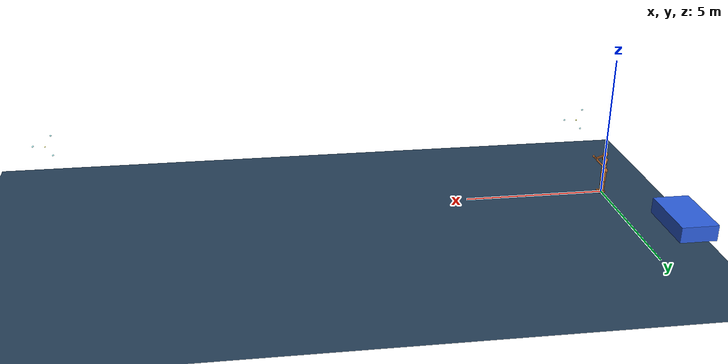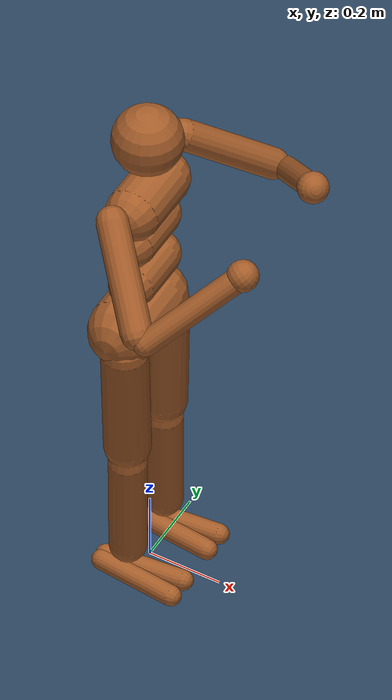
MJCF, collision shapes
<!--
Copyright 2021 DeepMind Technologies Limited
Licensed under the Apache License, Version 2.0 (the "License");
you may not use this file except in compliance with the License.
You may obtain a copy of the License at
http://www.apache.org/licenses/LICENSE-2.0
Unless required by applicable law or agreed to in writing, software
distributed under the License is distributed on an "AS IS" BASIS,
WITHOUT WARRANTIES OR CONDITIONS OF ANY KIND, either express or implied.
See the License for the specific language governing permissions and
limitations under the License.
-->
<mujoco model="Humanoid_SU34_3CamNodeParallel">
  <option timestep="0.005"/>

  <visual>
    <headlight ambient="0.35 0.35 0.35" diffuse="0.65 0.65 0.65" specular="0.25 0.25 0.25"/>
    <map force="0.1" zfar="30"/>
    <rgba haze="0.15 0.25 0.35 1"/>
    <global offwidth="2560" offheight="1440" elevation="-20" azimuth="120"/>
    <!-- Disable multisampling to reduce aliasing and make mask-from-depth more stable. -->
    <quality offsamples="0"/>
  </visual>

  <statistic center="0 0 0.7"/>

    <asset>
    <texture type="skybox" builtin="gradient" rgb1=".3 .5 .7" rgb2="0 0 0" width="32" height="512"/>
    <texture name="body" type="cube" builtin="flat" mark="cross" width="128" height="128" rgb1="0.8 0.6 0.4" rgb2="0.8 0.6 0.4" markrgb="1 1 1"/>
    <material name="body" texture="body" texuniform="true" rgba="0.8 0.6 .4 1"/>
    <texture name="grid" type="2d" builtin="checker" width="512" height="512" rgb1=".1 .2 .3" rgb2=".2 .3 .4"/>
    <material name="grid" texture="grid" texrepeat="1 1" texuniform="true" reflectance=".2"/>
    <texture name="su34_tex_Sukleft" type="2d" file="../../../models/su34/Map/Sukleft.png"/>
    <texture name="su34_tex_Suktop" type="2d" file="../../../models/su34/Map/Suktop.png"/>
    <texture name="su34_tex_R_tail" type="2d" file="../../../models/su34/Map/R-tail.png"/>
    <texture name="su34_tex_R1_tail" type="2d" file="../../../models/su34/Map/R1-tail.png"/>
    <texture name="su34_tex_F_panel" type="2d" file="../../../models/su34/Map/F-panel.png"/>
    <texture name="su34_tex_Lr_panel" type="2d" file="../../../models/su34/Map/Lr-panel.png"/>
    <texture name="su34_tex_C_panel" type="2d" file="../../../models/su34/Map/C-panel.png"/>
    <texture name="su34_tex_Sukright" type="2d" file="../../../models/su34/Map/Sukright.png"/>
    <texture name="su34_tex_R_ona" type="2d" file="../../../models/su34/Map/R-ona.png"/>
    <texture name="su34_tex_L_ona" type="2d" file="../../../models/su34/Map/L-ona.png"/>
    <mesh name="su34_mesh_F_G_Blue" file="../../../models/su34/meshes/su34_mtl_F_G_Blue.obj" scale="0.005 0.005 0.005" inertia="shell"/>
    <mesh name="su34_mesh_D_G_Gray" file="../../../models/su34/meshes/su34_mtl_D_G_Gray.obj" scale="0.005 0.005 0.005" inertia="shell"/>
    <mesh name="su34_mesh_Gears" file="../../../models/su34/meshes/su34_mtl_Gears.obj" scale="0.005 0.005 0.005" inertia="shell"/>
    <mesh name="su34_mesh_M_Gray" file="../../../models/su34/meshes/su34_mtl_M_Gray.obj" scale="0.005 0.005 0.005" inertia="shell"/>
    <mesh name="su34_mesh_F_Black" file="../../../models/su34/meshes/su34_mtl_F_Black.obj" scale="0.005 0.005 0.005" inertia="shell"/>
    <mesh name="su34_mesh_Chrome" file="../../../models/su34/meshes/su34_mtl_Chrome.obj" scale="0.005 0.005 0.005" inertia="shell"/>
    <mesh name="su34_mesh_Olive_D" file="../../../models/su34/meshes/su34_mtl_Olive_D.obj" scale="0.005 0.005 0.005" inertia="shell"/>
    <mesh name="su34_mesh_Fueldoor" file="../../../models/su34/meshes/su34_mtl_Fueldoor.obj" scale="0.005 0.005 0.005" inertia="shell"/>
    <mesh name="su34_mesh_Bottom" file="../../../models/su34/meshes/su34_mtl_Bottom.obj" scale="0.005 0.005 0.005" inertia="shell"/>
    <mesh name="su34_mesh_Camufla" file="../../../models/su34/meshes/su34_mtl_Camufla.obj" scale="0.005 0.005 0.005" inertia="shell"/>
    <mesh name="su34_mesh_Glass2" file="../../../models/su34/meshes/su34_mtl_Glass2.obj" scale="0.005 0.005 0.005" inertia="shell"/>
    <mesh name="su34_mesh_Out_tail" file="../../../models/su34/meshes/su34_mtl_Out_tail.obj" scale="0.005 0.005 0.005" inertia="shell"/>
    <mesh name="su34_mesh_In_tail" file="../../../models/su34/meshes/su34_mtl_In_tail.obj" scale="0.005 0.005 0.005" inertia="shell"/>
    <mesh name="su34_mesh_Cockpit" file="../../../models/su34/meshes/su34_mtl_Cockpit.obj" scale="0.005 0.005 0.005" inertia="shell"/>
    <mesh name="su34_mesh_G_Black" file="../../../models/su34/meshes/su34_mtl_G_Black.obj" scale="0.005 0.005 0.005" inertia="shell"/>
    <mesh name="su34_mesh_wire_184228153" file="../../../models/su34/meshes/su34_mtl_wire_184228153.obj" scale="0.005 0.005 0.005" inertia="shell"/>
    <mesh name="su34_mesh_F_Panel" file="../../../models/su34/meshes/su34_mtl_F_Panel.obj" scale="0.005 0.005 0.005" inertia="shell"/>
    <mesh name="su34_mesh_L_Panel" file="../../../models/su34/meshes/su34_mtl_L_Panel.obj" scale="0.005 0.005 0.005" inertia="shell"/>
    <mesh name="su34_mesh_C_Panel" file="../../../models/su34/meshes/su34_mtl_C_Panel.obj" scale="0.005 0.005 0.005" inertia="shell"/>
    <mesh name="su34_mesh_Glass" file="../../../models/su34/meshes/su34_mtl_Glass.obj" scale="0.005 0.005 0.005" inertia="shell"/>
    <mesh name="su34_mesh_Kubinka" file="../../../models/su34/meshes/su34_mtl_Kubinka.obj" scale="0.005 0.005 0.005" inertia="shell"/>
    <mesh name="su34_mesh_L_43" file="../../../models/su34/meshes/su34_mtl_L_43.obj" scale="0.005 0.005 0.005" inertia="shell"/>
    <mesh name="su34_mesh_R_43" file="../../../models/su34/meshes/su34_mtl_R_43.obj" scale="0.005 0.005 0.005" inertia="shell"/>
    <mesh name="su34_mesh_F_Engi" file="../../../models/su34/meshes/su34_mtl_F_Engi.obj" scale="0.005 0.005 0.005" inertia="shell"/>
    <mesh name="su34_mesh_BK_Engi" file="../../../models/su34/meshes/su34_mtl_BK_Engi.obj" scale="0.005 0.005 0.005" inertia="shell"/>
    <mesh name="su34_mesh_R_ona" file="../../../models/su34/meshes/su34_mtl_R_ona.obj" scale="0.005 0.005 0.005" inertia="shell"/>
    <mesh name="su34_mesh_L_ona" file="../../../models/su34/meshes/su34_mtl_L_ona.obj" scale="0.005 0.005 0.005" inertia="shell"/>
    <material name="su34_mat_F_G_Blue" rgba="0.7765 0.8471 0.8627 1"/>
    <material name="su34_mat_D_G_Gray" rgba="0.3059 0.349 0.4 1"/>
    <material name="su34_mat_Gears" rgba="0.1176 0.1176 0.1176 1"/>
    <material name="su34_mat_M_Gray" rgba="0.7 0.7 0.7 1"/>
    <material name="su34_mat_F_Black" rgba="0.1569 0.1569 0.1569 1"/>
    <material name="su34_mat_Chrome" rgba="0.6039 0.6706 0.7176 1"/>
    <material name="su34_mat_Olive_D" rgba="0.2549 0.3647 0.2745 1"/>
    <material name="su34_mat_Fueldoor" texture="su34_tex_Sukleft" rgba="1 1 1 1"/>
    <material name="su34_mat_Bottom" rgba="0.6824 0.8275 0.8588 1"/>
    <material name="su34_mat_Camufla" texture="su34_tex_Suktop" rgba="1 1 1 1"/>
    <material name="su34_mat_Glass2" rgba="1 1 1 0.9"/>
    <material name="su34_mat_Out_tail" texture="su34_tex_R_tail" rgba="1 1 1 1"/>
    <material name="su34_mat_In_tail" texture="su34_tex_R1_tail" rgba="1 1 1 1"/>
    <material name="su34_mat_Cockpit" rgba="0.3059 0.349 0.4 1"/>
    <material name="su34_mat_G_Black" rgba="0 0 0 1"/>
    <material name="su34_mat_wire_184228153" rgba="0.7216 0.8941 0.6 1"/>
    <material name="su34_mat_F_Panel" texture="su34_tex_F_panel" rgba="1 1 1 1"/>
    <material name="su34_mat_L_Panel" texture="su34_tex_Lr_panel" rgba="1 1 1 1"/>
    <material name="su34_mat_C_Panel" texture="su34_tex_C_panel" rgba="1 1 1 1"/>
    <material name="su34_mat_Glass" rgba="0.051 0.1961 0.0039 0.5"/>
    <material name="su34_mat_Kubinka" texture="su34_tex_Suktop" rgba="1 1 1 1"/>
    <material name="su34_mat_L_43" texture="su34_tex_Sukleft" rgba="1 1 1 1"/>
    <material name="su34_mat_R_43" texture="su34_tex_Sukright" rgba="1 1 1 1"/>
    <material name="su34_mat_F_Engi" rgba="0.3569 0.4039 0.4078 1"/>
    <material name="su34_mat_BK_Engi" rgba="0.1725 0.2314 0.2353 1"/>
    <material name="su34_mat_R_ona" texture="su34_tex_R_ona" rgba="1 1 1 1"/>
    <material name="su34_mat_L_ona" texture="su34_tex_L_ona" rgba="1 1 1 1"/>
  </asset>

  <default>
    <motor ctrlrange="-1 1" ctrllimited="true"/>
    <default class="body">

      <!-- geoms -->
      <geom type="capsule" condim="1" friction=".7" solimp=".9 .99 .003" solref=".015 1" material="body" group="1"/>
      <default class="thigh">
        <geom size=".06"/>
      </default>
      <default class="shin">
        <geom fromto="0 0 0 0 0 -.3" size=".049"/>
      </default>
      <default class="foot">
        <geom size=".027"/>
        <default class="foot1">
          <geom fromto="-.07 -.01 0 .14 -.03 0"/>
        </default>
        <default class="foot2">
          <geom fromto="-.07 .01 0 .14 .03 0"/>
        </default>
      </default>
      <default class="arm_upper">
        <geom size=".04"/>
      </default>
      <default class="arm_lower">
        <geom size=".031"/>
      </default>
      <default class="hand">
        <geom type="sphere" size=".04"/>
      </default>

      <!-- joints -->
      <joint type="hinge" damping=".2" stiffness="1" armature=".01" limited="true" solimplimit="0 .99 .01"/>
      <default class="joint_big">
        <joint damping="5" stiffness="10"/>
        <default class="hip_x">
          <joint range="-30 10"/>
        </default>
        <default class="hip_z">
          <joint range="-60 35"/>
        </default>
        <default class="hip_y">
          <joint axis="0 1 0" range="-150 20"/>
        </default>
        <default class="joint_big_stiff">
          <joint stiffness="20"/>
        </default>
      </default>
      <default class="knee">
        <joint pos="0 0 .02" axis="0 -1 0" range="-160 2"/>
      </default>
      <default class="ankle">
        <joint range="-50 50"/>
        <default class="ankle_y">
          <joint pos="0 0 .08" axis="0 1 0" stiffness="6"/>
        </default>
        <default class="ankle_x">
          <joint pos="0 0 .04" stiffness="3"/>
        </default>
      </default>
      <default class="shoulder">
        <joint range="-85 60"/>
      </default>
      <default class="elbow">
        <joint range="-100 50" stiffness="0"/>
      </default>
    </default>
  </default>

  <worldbody>
    <geom name="floor" size="0 0 .05" type="plane" material="grid" condim="3"/>
    <light name="spotlight" mode="targetbodycom" target="torso" diffuse="1.2 1.2 1.2" specular="0.6 0.6 0.6" pos="0 -6 4" cutoff="30"/>
    <light name="top" pos="0 0 2" mode="trackcom" diffuse="0.9 0.9 0.9" specular="0.3 0.3 0.3"/>

    <!-- Node rig root. Cameras are mounted relative to this body. -->
    <body name="node01" pos="0 -3 1.6">
      <site name="node01_origin" pos="0 0 0" size="0.02" rgba="1 1 0 1"/>
      <camera name="node01_cam0" pos="0.45 0 0.0" xyaxes="1 0 0  0 0 1" fovy="60"/>
      <camera name="node01_cam1" pos="-0.225 0 0.389711" xyaxes="1 0 0  0 0 1" fovy="60"/>
      <camera name="node01_cam2" pos="-0.225 0 -0.389711" xyaxes="1 0 0  0 0 1" fovy="60"/>
      <geom name="node01_cam0_marker" type="sphere" pos="0.45 -0.08 0.0" size="0.03" rgba="0 1 1 0.35" contype="0" conaffinity="0"/>
      <geom name="node01_cam1_marker" type="sphere" pos="-0.225 -0.08 0.389711" size="0.03" rgba="0 1 1 0.35" contype="0" conaffinity="0"/>
      <geom name="node01_cam2_marker" type="sphere" pos="-0.225 -0.08 -0.389711" size="0.03" rgba="0 1 1 0.35" contype="0" conaffinity="0"/>
    </body>

    <body name="node02" pos="20 -3 1.6">
      <site name="node02_origin" pos="0 0 0" size="0.02" rgba="1 1 0 1"/>
      <camera name="node02_cam0" pos="0.45 0 0.0" xyaxes="1 0 0  0 0 1" fovy="60"/>
      <camera name="node02_cam1" pos="-0.225 0 0.389711" xyaxes="1 0 0  0 0 1" fovy="60"/>
      <camera name="node02_cam2" pos="-0.225 0 -0.389711" xyaxes="1 0 0  0 0 1" fovy="60"/>
      <geom name="node02_cam0_marker" type="sphere" pos="0.45 -0.08 0.0" size="0.03" rgba="0 1 1 0.35" contype="0" conaffinity="0"/>
      <geom name="node02_cam1_marker" type="sphere" pos="-0.225 -0.08 0.389711" size="0.03" rgba="0 1 1 0.35" contype="0" conaffinity="0"/>
      <geom name="node02_cam2_marker" type="sphere" pos="-0.225 -0.08 -0.389711" size="0.03" rgba="0 1 1 0.35" contype="0" conaffinity="0"/>
    </body>

    <body name="torso" pos="0 0 1.282" childclass="body">
      <freejoint name="root"/>
      <geom name="torso" fromto="0 -.07 0 0 .07 0" size=".07"/>
      <geom name="waist_upper" fromto="-.01 -.06 -.12 -.01 .06 -.12" size=".06"/>
      <body name="head" pos="0 0 .19">
        <geom name="head" type="sphere" size=".09"/>
      </body>
      <body name="waist_lower" pos="-.01 0 -.26">
        <geom name="waist_lower" fromto="0 -.06 0 0 .06 0" size=".06"/>
        <joint name="abdomen_z" pos="0 0 .065" axis="0 0 1" range="-45 45" class="joint_big_stiff"/>
        <joint name="abdomen_y" pos="0 0 .065" axis="0 1 0" range="-75 30" class="joint_big"/>
        <body name="pelvis" pos="0 0 -.165">
          <joint name="abdomen_x" pos="0 0 .1" axis="1 0 0" range="-35 35" class="joint_big"/>
          <geom name="butt" fromto="-.02 -.07 0 -.02 .07 0" size=".09"/>
          <body name="thigh_right" pos="0 -.1 -.04">
            <joint name="hip_x_right" axis="1 0 0" class="hip_x"/>
            <joint name="hip_z_right" axis="0 0 1" class="hip_z"/>
            <joint name="hip_y_right" class="hip_y"/>
            <geom name="thigh_right" fromto="0 0 0 0 .01 -.34" class="thigh"/>
            <body name="shin_right" pos="0 .01 -.4">
              <joint name="knee_right" class="knee"/>
              <geom name="shin_right" class="shin"/>
              <body name="foot_right" pos="0 0 -.39">
                <joint name="ankle_y_right" class="ankle_y"/>
                <joint name="ankle_x_right" class="ankle_x" axis="1 0 .5"/>
                <geom name="foot1_right" class="foot1"/>
                <geom name="foot2_right" class="foot2"/>
              </body>
            </body>
          </body>
          <body name="thigh_left" pos="0 .1 -.04">
            <joint name="hip_x_left" axis="-1 0 0" class="hip_x"/>
            <joint name="hip_z_left" axis="0 0 -1" class="hip_z"/>
            <joint name="hip_y_left" class="hip_y"/>
            <geom name="thigh_left" fromto="0 0 0 0 -.01 -.34" class="thigh"/>
            <body name="shin_left" pos="0 -.01 -.4">
              <joint name="knee_left" class="knee"/>
              <geom name="shin_left" fromto="0 0 0 0 0 -.3" class="shin"/>
              <body name="foot_left" pos="0 0 -.39">
                <joint name="ankle_y_left" class="ankle_y"/>
                <joint name="ankle_x_left" class="ankle_x" axis="-1 0 -.5"/>
                <geom name="foot1_left" class="foot1"/>
                <geom name="foot2_left" class="foot2"/>
              </body>
            </body>
          </body>
        </body>
      </body>
      <body name="upper_arm_right" pos="0 -.17 .06">
        <joint name="shoulder1_right" axis="2 1 1" class="shoulder"/>
        <joint name="shoulder2_right" axis="0 -1 1" class="shoulder"/>
        <geom name="upper_arm_right" fromto="0 0 0 .16 -.16 -.16" class="arm_upper"/>
        <body name="lower_arm_right" pos=".18 -.18 -.18">
          <joint name="elbow_right" axis="0 -1 1" class="elbow"/>
          <geom name="lower_arm_right" fromto=".01 .01 .01 .17 .17 .17" class="arm_lower"/>
          <body name="hand_right" pos=".18 .18 .18">
            <geom name="hand_right" zaxis="1 1 1" class="hand"/>
          </body>
        </body>
      </body>
      <body name="upper_arm_left" pos="0 .17 .06">
        <joint name="shoulder1_left" axis="-2 1 -1" class="shoulder"/>
        <joint name="shoulder2_left" axis="0 -1 -1" class="shoulder"/>
        <geom name="upper_arm_left" fromto="0 0 0 .16 .16 -.16" class="arm_upper"/>
        <body name="lower_arm_left" pos=".18 .18 -.18">
          <joint name="elbow_left" axis="0 -1 -1" class="elbow"/>
          <geom name="lower_arm_left" fromto=".01 -.01 .01 .17 -.17 .17" class="arm_lower"/>
          <body name="hand_left" pos=".18 -.18 .18">
            <geom name="hand_left" zaxis="1 -1 1" class="hand"/>
          </body>
        </body>
      </body>
    </body>

    <!-- Dynamic target (free joint => belongs to mjCAT_DYNAMIC, useful for mask-from-depth). -->
    <body name="target" pos="0 6 2.0">
      <freejoint/>
      <inertial pos="0 0 0" mass="1" diaginertia="0.1 0.1 0.1"/>
      <body name="target_su34" pos="0.011244 0.0362665 -0.0834365" quat="0.7071068 0.7071068 0 0">
        <geom name="target_su34_F_G_Blue" type="mesh" mesh="su34_mesh_F_G_Blue" material="su34_mat_F_G_Blue" contype="0" conaffinity="0" group="1"/>
        <geom name="target_su34_D_G_Gray" type="mesh" mesh="su34_mesh_D_G_Gray" material="su34_mat_D_G_Gray" contype="0" conaffinity="0" group="1"/>
        <geom name="target_su34_Gears" type="mesh" mesh="su34_mesh_Gears" material="su34_mat_Gears" contype="0" conaffinity="0" group="1"/>
        <geom name="target_su34_M_Gray" type="mesh" mesh="su34_mesh_M_Gray" material="su34_mat_M_Gray" contype="0" conaffinity="0" group="1"/>
        <geom name="target_su34_F_Black" type="mesh" mesh="su34_mesh_F_Black" material="su34_mat_F_Black" contype="0" conaffinity="0" group="1"/>
        <geom name="target_su34_Chrome" type="mesh" mesh="su34_mesh_Chrome" material="su34_mat_Chrome" contype="0" conaffinity="0" group="1"/>
        <geom name="target_su34_Olive_D" type="mesh" mesh="su34_mesh_Olive_D" material="su34_mat_Olive_D" contype="0" conaffinity="0" group="1"/>
        <geom name="target_su34_Fueldoor" type="mesh" mesh="su34_mesh_Fueldoor" material="su34_mat_Fueldoor" contype="0" conaffinity="0" group="1"/>
        <geom name="target_su34_Bottom" type="mesh" mesh="su34_mesh_Bottom" material="su34_mat_Bottom" contype="0" conaffinity="0" group="1"/>
        <geom name="target_su34_Camufla" type="mesh" mesh="su34_mesh_Camufla" material="su34_mat_Camufla" contype="0" conaffinity="0" group="1"/>
        <geom name="target_su34_Glass2" type="mesh" mesh="su34_mesh_Glass2" material="su34_mat_Glass2" contype="0" conaffinity="0" group="1"/>
        <geom name="target_su34_Out_tail" type="mesh" mesh="su34_mesh_Out_tail" material="su34_mat_Out_tail" contype="0" conaffinity="0" group="1"/>
        <geom name="target_su34_In_tail" type="mesh" mesh="su34_mesh_In_tail" material="su34_mat_In_tail" contype="0" conaffinity="0" group="1"/>
        <geom name="target_su34_Cockpit" type="mesh" mesh="su34_mesh_Cockpit" material="su34_mat_Cockpit" contype="0" conaffinity="0" group="1"/>
        <geom name="target_su34_G_Black" type="mesh" mesh="su34_mesh_G_Black" material="su34_mat_G_Black" contype="0" conaffinity="0" group="1"/>
        <geom name="target_su34_wire_184228153" type="mesh" mesh="su34_mesh_wire_184228153" material="su34_mat_wire_184228153" contype="0" conaffinity="0" group="1"/>
        <geom name="target_su34_F_Panel" type="mesh" mesh="su34_mesh_F_Panel" material="su34_mat_F_Panel" contype="0" conaffinity="0" group="1"/>
        <geom name="target_su34_L_Panel" type="mesh" mesh="su34_mesh_L_Panel" material="su34_mat_L_Panel" contype="0" conaffinity="0" group="1"/>
        <geom name="target_su34_C_Panel" type="mesh" mesh="su34_mesh_C_Panel" material="su34_mat_C_Panel" contype="0" conaffinity="0" group="1"/>
        <geom name="target_su34_Glass" type="mesh" mesh="su34_mesh_Glass" material="su34_mat_Glass" contype="0" conaffinity="0" group="1"/>
        <geom name="target_su34_Kubinka" type="mesh" mesh="su34_mesh_Kubinka" material="su34_mat_Kubinka" contype="0" conaffinity="0" group="1"/>
        <geom name="target_su34_L_43" type="mesh" mesh="su34_mesh_L_43" material="su34_mat_L_43" contype="0" conaffinity="0" group="1"/>
        <geom name="target_su34_R_43" type="mesh" mesh="su34_mesh_R_43" material="su34_mat_R_43" contype="0" conaffinity="0" group="1"/>
        <geom name="target_su34_F_Engi" type="mesh" mesh="su34_mesh_F_Engi" material="su34_mat_F_Engi" contype="0" conaffinity="0" group="1"/>
        <geom name="target_su34_BK_Engi" type="mesh" mesh="su34_mesh_BK_Engi" material="su34_mat_BK_Engi" contype="0" conaffinity="0" group="1"/>
        <geom name="target_su34_R_ona" type="mesh" mesh="su34_mesh_R_ona" material="su34_mat_R_ona" contype="0" conaffinity="0" group="1"/>
        <geom name="target_su34_L_ona" type="mesh" mesh="su34_mesh_L_ona" material="su34_mat_L_ona" contype="0" conaffinity="0" group="1"/>
      </body>
      <geom name="target_su34_proxy" type="box" size="0.572 0.994 0.251" rgba="0.18 0.38 0.88 0.05" contype="1" conaffinity="1" group="3"/>
    </body>
  </worldbody>

  <contact>
    <exclude body1="waist_lower" body2="thigh_right"/>
    <exclude body1="waist_lower" body2="thigh_left"/>
  </contact>

  <tendon>
    <fixed name="hamstring_right" limited="true" range="-0.3 2">
      <joint joint="hip_y_right" coef=".5"/>
      <joint joint="knee_right" coef="-.5"/>
    </fixed>
    <fixed name="hamstring_left" limited="true" range="-0.3 2">
      <joint joint="hip_y_left" coef=".5"/>
      <joint joint="knee_left" coef="-.5"/>
    </fixed>
  </tendon>

  <actuator>
    <motor name="abdomen_z" gear="40" joint="abdomen_z"/>
    <motor name="abdomen_y" gear="40" joint="abdomen_y"/>
    <motor name="abdomen_x" gear="40" joint="abdomen_x"/>
    <motor name="hip_x_right" gear="40" joint="hip_x_right"/>
    <motor name="hip_z_right" gear="40" joint="hip_z_right"/>
    <motor name="hip_y_right" gear="120" joint="hip_y_right"/>
    <motor name="knee_right" gear="80" joint="knee_right"/>
    <motor name="ankle_y_right" gear="20" joint="ankle_y_right"/>
    <motor name="ankle_x_right" gear="20" joint="ankle_x_right"/>
    <motor name="hip_x_left" gear="40" joint="hip_x_left"/>
    <motor name="hip_z_left" gear="40" joint="hip_z_left"/>
    <motor name="hip_y_left" gear="120" joint="hip_y_left"/>
    <motor name="knee_left" gear="80" joint="knee_left"/>
    <motor name="ankle_y_left" gear="20" joint="ankle_y_left"/>
    <motor name="ankle_x_left" gear="20" joint="ankle_x_left"/>
    <motor name="shoulder1_right" gear="20" joint="shoulder1_right"/>
    <motor name="shoulder2_right" gear="20" joint="shoulder2_right"/>
    <motor name="elbow_right" gear="40" joint="elbow_right"/>
    <motor name="shoulder1_left" gear="20" joint="shoulder1_left"/>
    <motor name="shoulder2_left" gear="20" joint="shoulder2_left"/>
    <motor name="elbow_left" gear="40" joint="elbow_left"/>
  </actuator>

  <keyframe>
    <key name="squat"
         qpos="0 0 0.596
               0.988015 0 0.154359 0
               0 0.4 0
               -0.25 -0.5 -2.5 -2.65 -0.8 0.56
               -0.25 -0.5 -2.5 -2.65 -0.8 0.56
               0 0 0 0 0 0
               0 6 2 1 0 0 0"/>
    <key name="stand_on_left_leg"
         qpos="0 0 1.21948
               0.971588 -0.179973 0.135318 -0.0729076
               -0.0516 -0.202 0.23
               -0.24 -0.007 -0.34 -1.76 -0.466 -0.0415
               -0.08 -0.01 -0.37 -0.685 -0.35 -0.09
               0.109 -0.067 -0.7 -0.05 0.12 0.16
               0 6 2 1 0 0 0"/>
    <key name="prone"
         qpos="0.4 0 0.0757706
               0.7325 0 0.680767 0
               0 0.0729 0
               0.0077 0.0019 -0.026 -0.351 -0.27 0
               0.0077 0.0019 -0.026 -0.351 -0.27 0
               0.56 -0.62 -1.752
               0.56 -0.62 -1.752
               0 6 2 1 0 0 0"/>
    <key name="supine"
         qpos="-0.4 0 0.08122
               0.722788 0 -0.69107 0
               0 -0.25 0
               0.0182 0.0142 0.3 0.042 -0.44 -0.02
               0.0182 0.0142 0.3 0.042 -0.44 -0.02
               0.186 -0.73 -1.73
               0.186 -0.73 -1.73
               0 6 2 1 0 0 0"/>
  </keyframe>
</mujoco>
